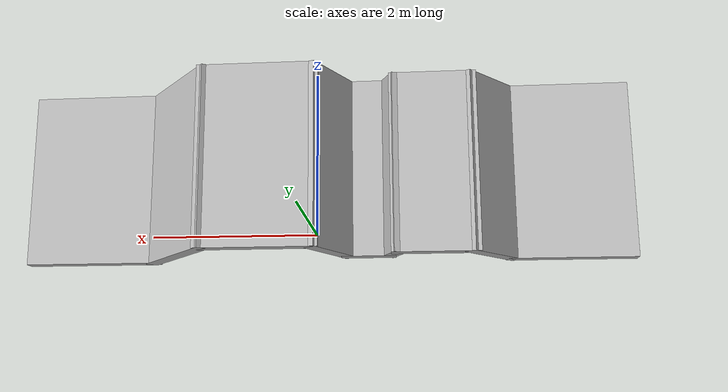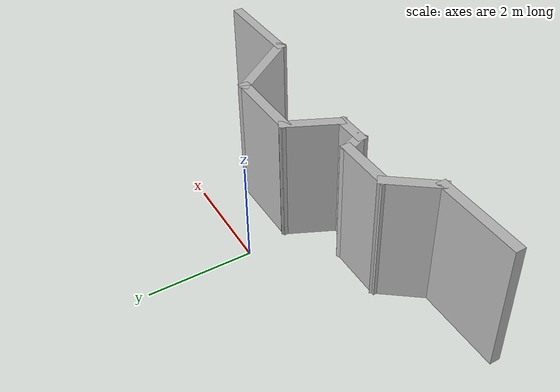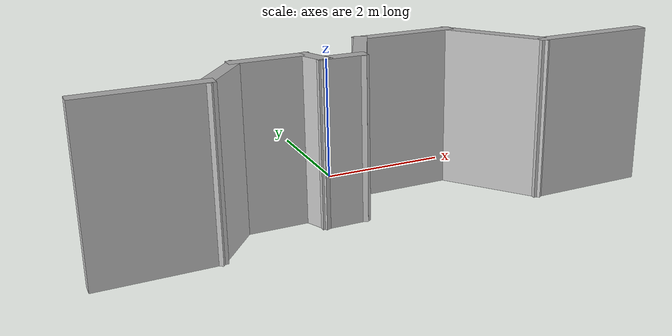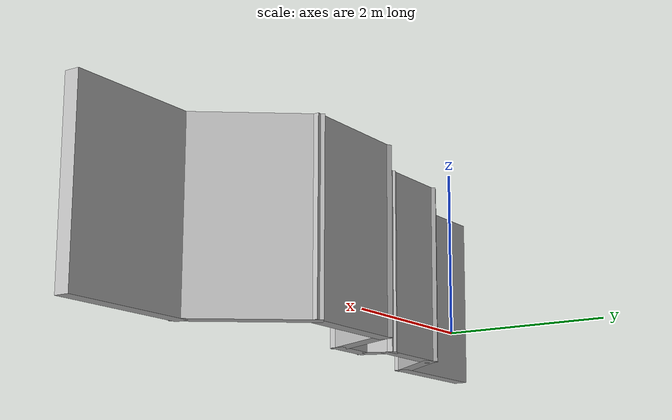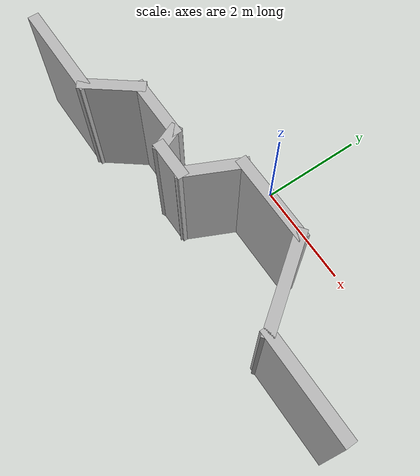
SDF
<?xml version='1.0'?>
<sdf version='1.5'>
  <model name='SampleWall'>
    <link name='Wall_10'>
      <collision name='Wall_10_Collision'>
        <geometry>
          <box>
            <size>1.8 0.2 2.5</size>
          </box>
        </geometry>
        <pose>0 0 1.25 0 -0 0</pose>
      </collision>
      <visual name='Wall_10_Visual'>
        <pose>0 0 1.25 0 -0 0</pose>
        <geometry>
          <box>
            <size>1.8 0.2 2.5</size>
          </box>
        </geometry>
        <material>
          <script>
            <uri>file://media/materials/scripts/gazebo.material</uri>
            <name>Gazebo/Pedestrian</name>
          </script>
        </material>
      </visual>
      <pose>2.12 -1.53 0 0 0 -0.927295</pose>
    </link>
    <link name='Wall_11'>
      <collision name='Wall_11_Collision'>
        <geometry>
          <box>
            <size>1.95 0.2 2.5</size>
          </box>
        </geometry>
        <pose>0 0 1.25 0 -0 0</pose>
      </collision>
      <visual name='Wall_11_Visual'>
        <pose>0 0 1.25 0 -0 0</pose>
        <geometry>
          <box>
            <size>1.95 0.2 2.5</size>
          </box>
        </geometry>
        <material>
          <script>
            <uri>file://media/materials/scripts/gazebo.material</uri>
            <name>Gazebo/Pedestrian</name>
          </script>
        </material>
      </visual>
      <pose>3.475 -2.17 0 0 -0 0</pose>
    </link>
    <link name='Wall_3'>
      <collision name='Wall_3_Collision'>
        <geometry>
          <box>
            <size>1.79 0.2 2.5</size>
          </box>
        </geometry>
        <pose>0 0 1.25 0 -0 0</pose>
      </collision>
      <visual name='Wall_3_Visual'>
        <pose>0 0 1.25 0 -0 0</pose>
        <geometry>
          <box>
            <size>1.79 0.2 2.5</size>
          </box>
        </geometry>
        <material>
          <script>
            <uri>file://media/materials/scripts/gazebo.material</uri>
            <name>Gazebo/Pedestrian</name>
          </script>
        </material>
      </visual>
      <pose>-3.305 -2.22 0 0 -0 0</pose>
    </link>
    <link name='Wall_4'>
      <collision name='Wall_4_Collision'>
        <geometry>
          <box>
            <size>1.1481 0.2 2.5</size>
          </box>
        </geometry>
        <pose>0 0 1.25 0 -0 0</pose>
      </collision>
      <visual name='Wall_4_Visual'>
        <pose>0 0 1.25 0 -0 0</pose>
        <geometry>
          <box>
            <size>1.1481 0.2 2.5</size>
          </box>
        </geometry>
        <material>
          <script>
            <uri>file://media/materials/scripts/gazebo.material</uri>
            <name>Gazebo/Pedestrian</name>
          </script>
        </material>
      </visual>
      <pose>-2.22 -1.845 0 0 -0 0.912528</pose>
    </link>
    <link name='Wall_5'>
      <collision name='Wall_5_Collision'>
        <geometry>
          <box>
            <size>1.2 0.2 2.5</size>
          </box>
        </geometry>
        <pose>0 0 1.25 0 -0 0</pose>
      </collision>
      <visual name='Wall_5_Visual'>
        <pose>0 0 1.25 0 -0 0</pose>
        <geometry>
          <box>
            <size>1.2 0.2 2.5</size>
          </box>
        </geometry>
        <material>
          <script>
            <uri>file://media/materials/scripts/gazebo.material</uri>
            <name>Gazebo/Pedestrian</name>
          </script>
        </material>
      </visual>
      <pose>-1.43 -1.47 0 0 -0 0</pose>
    </link>
    <link name='Wall_6'>
      <collision name='Wall_6_Collision'>
        <geometry>
          <box>
            <size>0.558469 0.2 2.5</size>
          </box>
        </geometry>
        <pose>0 0 1.25 0 -0 0</pose>
      </collision>
      <visual name='Wall_6_Visual'>
        <pose>0 0 1.25 0 -0 0</pose>
        <geometry>
          <box>
            <size>0.558469 0.2 2.5</size>
          </box>
        </geometry>
        <material>
          <script>
            <uri>file://media/materials/scripts/gazebo.material</uri>
            <name>Gazebo/Pedestrian</name>
          </script>
        </material>
      </visual>
      <pose>-0.86 -1.635 0 0 0 -1.16957</pose>
    </link>
    <link name='Wall_7'>
      <collision name='Wall_7_Collision'>
        <geometry>
          <box>
            <size>0.75 0.2 2.5</size>
          </box>
        </geometry>
        <pose>0 0 1.25 0 -0 0</pose>
      </collision>
      <visual name='Wall_7_Visual'>
        <pose>0 0 1.25 0 -0 0</pose>
        <geometry>
          <box>
            <size>0.75 0.2 2.5</size>
          </box>
        </geometry>
        <material>
          <script>
            <uri>file://media/materials/scripts/gazebo.material</uri>
            <name>Gazebo/Pedestrian</name>
          </script>
        </material>
      </visual>
      <pose>-0.515 -1.8 0 0 -0 0</pose>
    </link>
    <link name='Wall_8'>
      <collision name='Wall_8_Collision'>
        <geometry>
          <box>
            <size>1.20648 0.2 2.5</size>
          </box>
        </geometry>
        <pose>0 0 1.25 0 -0 0</pose>
      </collision>
      <visual name='Wall_8_Visual'>
        <pose>0 0 1.25 0 -0 0</pose>
        <geometry>
          <box>
            <size>1.20648 0.2 2.5</size>
          </box>
        </geometry>
        <material>
          <script>
            <uri>file://media/materials/scripts/gazebo.material</uri>
            <name>Gazebo/Pedestrian</name>
          </script>
        </material>
      </visual>
      <pose>-0.025 -1.345 0 0 -0 1.12937</pose>
    </link>
    <link name='Wall_9'>
      <collision name='Wall_9_Collision'>
        <geometry>
          <box>
            <size>1.65 0.2 2.5</size>
          </box>
        </geometry>
        <pose>0 0 1.25 0 -0 0</pose>
      </collision>
      <visual name='Wall_9_Visual'>
        <pose>0 0 1.25 0 -0 0</pose>
        <geometry>
          <box>
            <size>1.65 0.2 2.5</size>
          </box>
        </geometry>
        <material>
          <script>
            <uri>file://media/materials/scripts/gazebo.material</uri>
            <name>Gazebo/Pedestrian</name>
          </script>
        </material>
      </visual>
      <pose>0.915 -0.89 0 0 -0 0</pose>
    </link>
    <static>1</static>
  </model>
</sdf>
